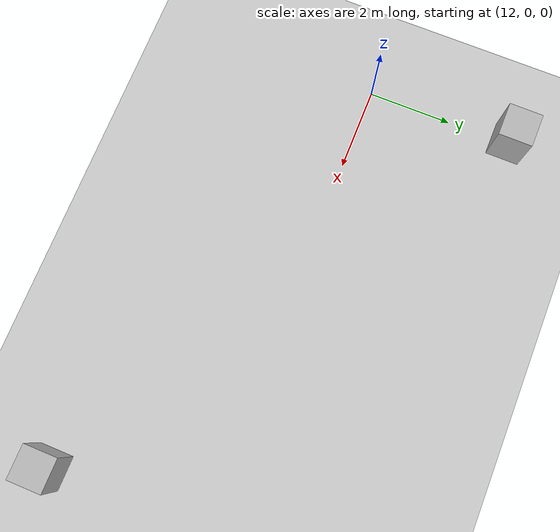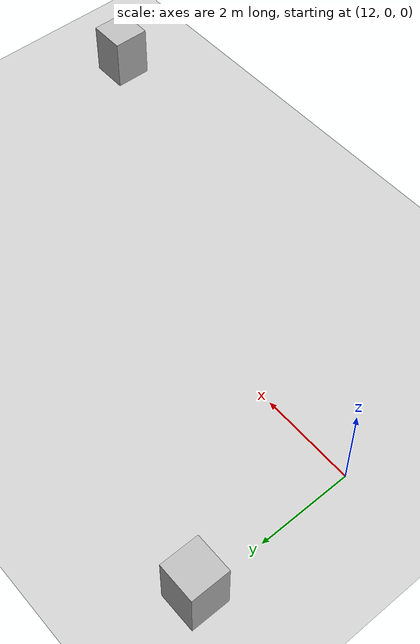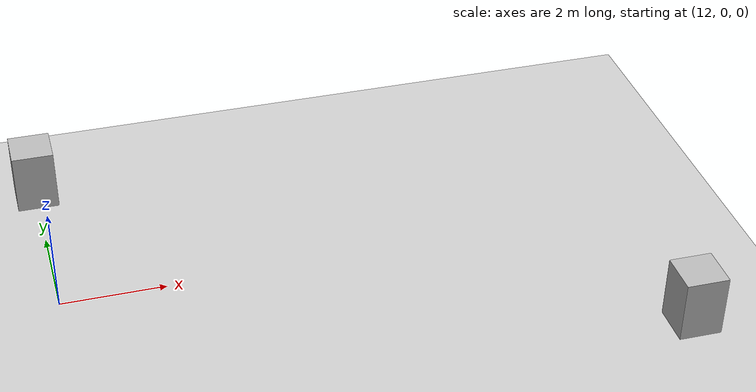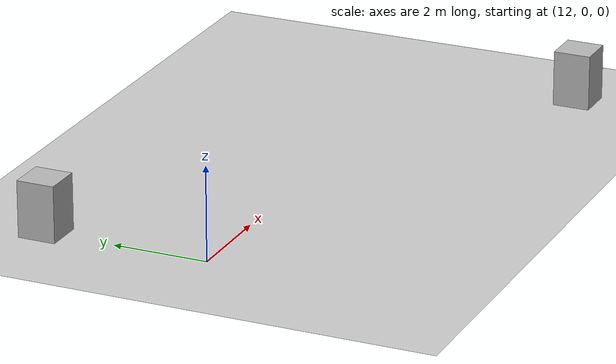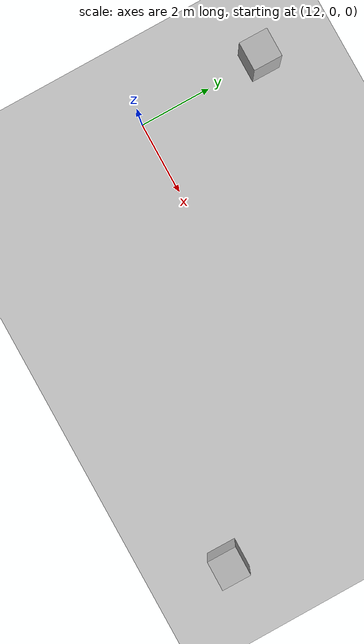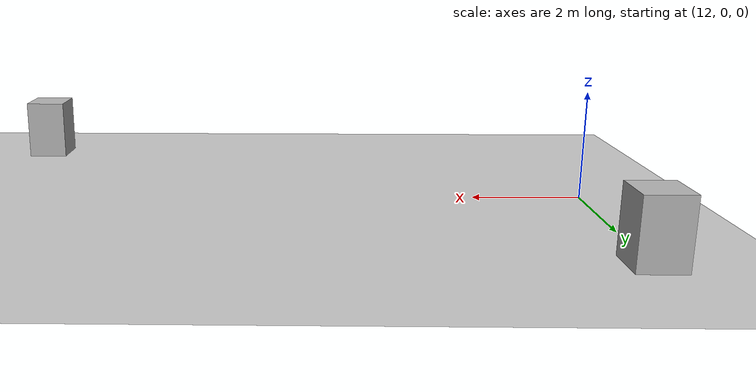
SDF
<?xml version="1.0"?>
<sdf version="1.6">
  <world name="v2-04g-r4-cruise-s5063">
    <gravity>0 0 -9.81</gravity>
    <physics name="v2_deterministic" type="ode">
      <max_step_size>0.002</max_step_size>
      <real_time_update_rate>500</real_time_update_rate>
    </physics>
    <include>
      <uri>model://sun</uri>
    </include>
    <include>
      <uri>model://ground_plane</uri>
    </include>
    <model name="cruise-left">
      <static>true</static>
      <pose>11.997889458 3.491928623 0.600000000 0 0 -0.005039785</pose>
      <link name="link">
        <collision name="collision">
          <geometry>
            <box>
              <size>0.800000 0.800000 1.200000</size>
            </box>
          </geometry>
        </collision>
        <visual name="visual">
          <geometry>
            <box>
              <size>0.800000 0.800000 1.200000</size>
            </box>
          </geometry>
        </visual>
      </link>
    </model>
    <model name="cruise-right">
      <static>true</static>
      <pose>22.966474762 -3.513408154 0.600000000 0 0 -0.007532797</pose>
      <link name="link">
        <collision name="collision">
          <geometry>
            <box>
              <size>0.800000 0.800000 1.200000</size>
            </box>
          </geometry>
        </collision>
        <visual name="visual">
          <geometry>
            <box>
              <size>0.800000 0.800000 1.200000</size>
            </box>
          </geometry>
        </visual>
      </link>
    </model>
  </world>
</sdf>
